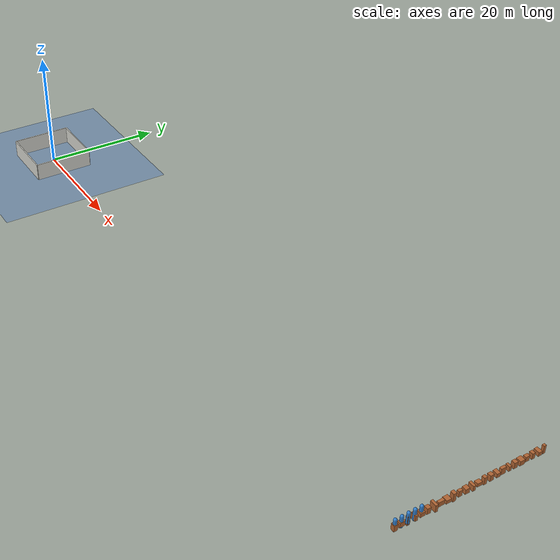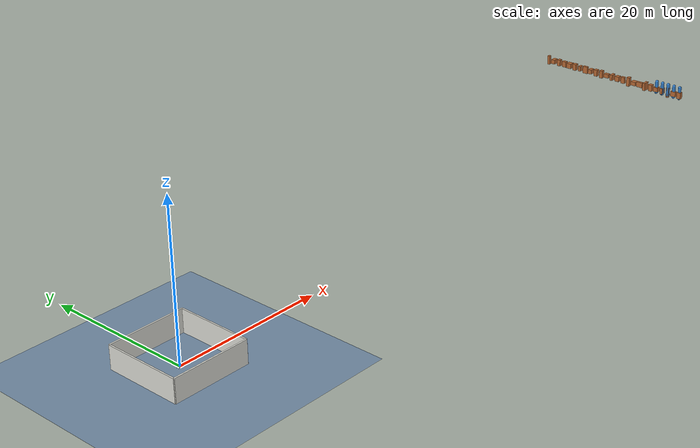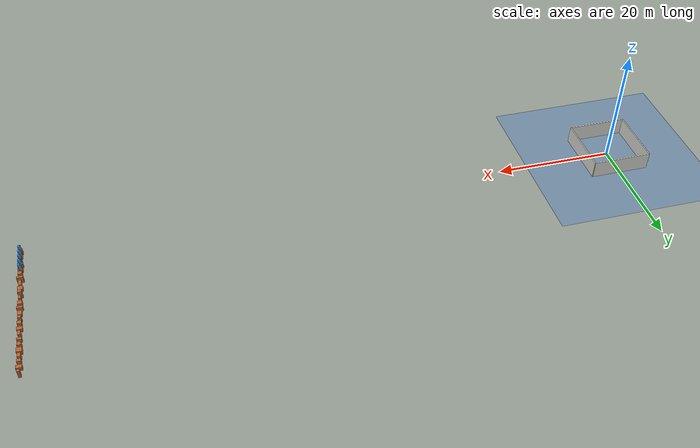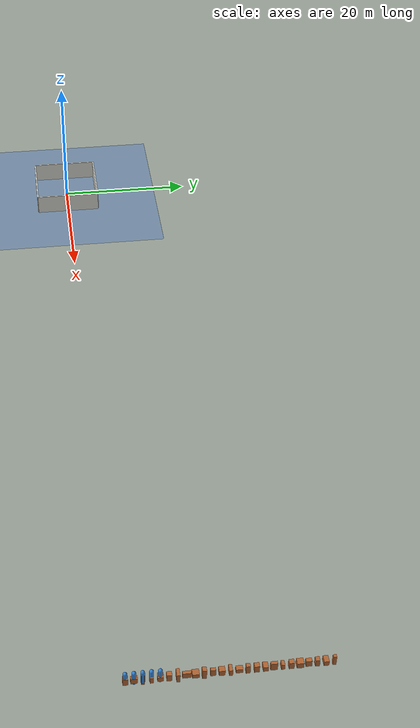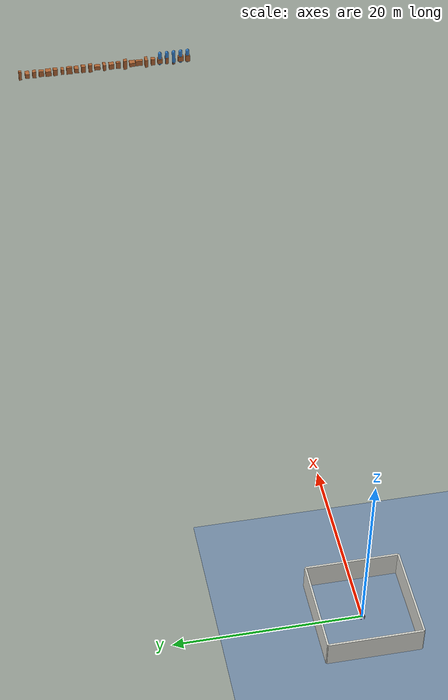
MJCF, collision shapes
<mujoco model="spot_scene">

  <compiler angle="radian" meshdir="assets" autolimits="true"/>

  <!-- RL-training physics: Euler integrator for fast MJX JIT compilation.
       Switch to implicitfast + impratio=100 for sim-to-real evaluation. -->
  <option timestep="0.005" gravity="0 0 -9.81" integrator="Euler"
          cone="elliptic" impratio="10"/>

  <visual>
    <global offwidth="1920" offheight="1080" ellipsoidinertia="true"/>
    <headlight diffuse="0.6 0.6 0.6" ambient="0.3 0.3 0.3" specular="0.2 0.2 0.2"/>
    <quality shadowsize="4096"/>
  </visual>

  <default>
    <!-- Spot robot defaults (from Menagerie reference) -->
    <default class="spot">
      <geom solref="0.004 1"/>
      <joint actuatorfrcrange="-1000 1000" damping="1.0" armature="0.01" frictionloss="0.1"/>
      <position kp="500" kv="40" inheritrange="1" ctrllimited="true"/>
      <default class="visual">
        <geom group="2" type="mesh" contype="0" conaffinity="0"/>
      </default>
      <default class="collision">
        <geom group="3"/>
        <default class="foot">
          <geom type="sphere" size="0.036" pos="0 0 -0.3365" priority="1"
                condim="3" solimp="0.015 1 0.036" friction="0.8 0.02 0.01"/>
        </default>
      </default>
    </default>
    <default class="obstacle">
      <geom type="box" rgba="0.7 0.4 0.2 1" contype="0" conaffinity="0"/>
    </default>
    <default class="dynamic_obs">
      <geom type="capsule" rgba="0.2 0.5 0.8 0.9" contype="0" conaffinity="0"/>
    </default>
  </default>

  <!-- ASSETS                                                            -->
  <asset>
    <!-- Scene textures/materials -->
    <texture name="floor_tex" type="2d" builtin="checker"
             rgb1="0.45 0.55 0.65" rgb2="0.35 0.45 0.55" width="512" height="512"/>
    <material name="floor_mat" texture="floor_tex" texrepeat="10 10" reflectance="0.25"
              specular="0.4" shininess="0.5"/>
    <texture name="wall_tex" type="2d" builtin="flat"
             rgb1="0.85 0.85 0.82" width="128" height="128"/>
    <material name="wall_mat" texture="wall_tex" reflectance="0.05"/>

    <!-- Spot materials -->
    <material name="BlackAbs" rgba="0.1 0.1 0.1 1"/>
    <material name="wrap" rgba="0.878431 0.666666 0.227450 1"/>

    <!-- Spot meshes (from MuJoCo Menagerie — real Spot geometry) -->
    <mesh file="body_0.obj"/>
    <mesh file="body_1.obj"/>
    <mesh file="front_left_hip.obj"/>
    <mesh file="front_left_upper_leg_0.obj"/>
    <mesh file="front_left_upper_leg_1.obj"/>
    <mesh file="front_left_lower_leg.obj"/>
    <mesh file="front_right_hip.obj"/>
    <mesh file="front_right_upper_leg_0.obj"/>
    <mesh file="front_right_upper_leg_1.obj"/>
    <mesh file="front_right_lower_leg.obj"/>
    <mesh file="rear_left_hip.obj"/>
    <mesh file="rear_left_upper_leg_0.obj"/>
    <mesh file="rear_left_upper_leg_1.obj"/>
    <mesh file="rear_left_lower_leg.obj"/>
    <mesh file="rear_right_hip.obj"/>
    <mesh file="rear_right_upper_leg_0.obj"/>
    <mesh file="rear_right_upper_leg_1.obj"/>
    <mesh file="rear_right_lower_leg.obj"/>
    <mesh file="body_collision.obj"/>
    <mesh file="left_upper_leg_collision.obj"/>
    <mesh file="left_lower_leg_collision.obj"/>
    <mesh file="right_upper_leg_collision.obj"/>
    <mesh file="right_lower_leg_collision.obj"/>
  </asset>

  <!-- WORLD BODY                                                         -->
  <worldbody>

    <!-- Lighting -->
    <light name="top_light" pos="0 0 6" dir="0 0 -1" diffuse="0.8 0.8 0.8"
           specular="0.3 0.3 0.3" castshadow="true" cutoff="60"/>
    <light name="front_fill" pos="4 -4 5" dir="-0.4 0.4 -0.7" diffuse="0.4 0.4 0.5"
           specular="0.1 0.1 0.1" castshadow="false"/>
    <light name="back_fill" pos="-3 3 4" dir="0.3 -0.3 -0.6" diffuse="0.25 0.25 0.3"
           specular="0.05 0.05 0.05" castshadow="false"/>

    <!-- Floor -->
    <geom name="floor" type="plane" size="15 15 0.1"
          material="floor_mat" rgba="0.45 0.55 0.65 1" condim="3"/>

    <!-- Room walls (10x10 m room) — fixed -->
    <geom name="wall_north" type="box" size="5 0.1 1.5"
          pos="0 5 1.5" material="wall_mat" rgba="0.85 0.85 0.82 1"/>
    <geom name="wall_south" type="box" size="5 0.1 1.5"
          pos="0 -5 1.5" material="wall_mat" rgba="0.85 0.85 0.82 1"/>
    <geom name="wall_east" type="box" size="0.1 5 1.5"
          pos="5 0 1.5" material="wall_mat" rgba="0.85 0.85 0.82 1"/>
    <geom name="wall_west" type="box" size="0.1 5 1.5"
          pos="-5 0 1.5" material="wall_mat" rgba="0.85 0.85 0.82 1"/>

    <!-- STATIC OBSTACLE MOCAP BODIES (25 max from config)            -->
    <body name="obstacle_0"  mocap="true" pos="100 0 0.5"><geom class="obstacle" size="0.3 0.3 0.5"/></body>
    <body name="obstacle_1"  mocap="true" pos="100 1 0.5"><geom class="obstacle" size="0.25 0.4 0.4"/></body>
    <body name="obstacle_2"  mocap="true" pos="100 2 0.5"><geom class="obstacle" size="0.2 0.2 0.8"/></body>
    <body name="obstacle_3"  mocap="true" pos="100 3 0.5"><geom class="obstacle" size="0.4 0.2 0.45"/></body>
    <body name="obstacle_4"  mocap="true" pos="100 4 0.5"><geom class="obstacle" size="0.35 0.35 0.35"/></body>
    <body name="obstacle_5"  mocap="true" pos="100 5 0.5"><geom class="obstacle" size="0.3 0.3 0.5"/></body>
    <body name="obstacle_6"  mocap="true" pos="100 6 0.5"><geom class="obstacle" size="0.5 0.2 0.6"/></body>
    <body name="obstacle_7"  mocap="true" pos="100 7 0.5"><geom class="obstacle" size="0.2 0.5 0.4"/></body>
    <body name="obstacle_8"  mocap="true" pos="100 8 0.5"><geom class="obstacle" size="0.4 0.4 0.3"/></body>
    <body name="obstacle_9"  mocap="true" pos="100 9 0.5"><geom class="obstacle" size="0.3 0.25 0.7"/></body>
    <body name="obstacle_10" mocap="true" pos="100 10 0.5"><geom class="obstacle" size="0.2 0.3 0.5"/></body>
    <body name="obstacle_11" mocap="true" pos="100 11 0.5"><geom class="obstacle" size="0.35 0.35 0.4"/></body>
    <body name="obstacle_12" mocap="true" pos="100 12 0.5"><geom class="obstacle" size="0.45 0.2 0.45"/></body>
    <body name="obstacle_13" mocap="true" pos="100 13 0.5"><geom class="obstacle" size="0.3 0.4 0.3"/></body>
    <body name="obstacle_14" mocap="true" pos="100 14 0.5"><geom class="obstacle" size="0.25 0.25 0.6"/></body>
    <body name="obstacle_15" mocap="true" pos="100 15 0.5"><geom class="obstacle" size="0.3 0.3 0.5"/></body>
    <body name="obstacle_16" mocap="true" pos="100 16 0.5"><geom class="obstacle" size="0.4 0.3 0.35"/></body>
    <body name="obstacle_17" mocap="true" pos="100 17 0.5"><geom class="obstacle" size="0.2 0.4 0.55"/></body>
    <body name="obstacle_18" mocap="true" pos="100 18 0.5"><geom class="obstacle" size="0.35 0.2 0.4"/></body>
    <body name="obstacle_19" mocap="true" pos="100 19 0.5"><geom class="obstacle" size="0.3 0.3 0.5"/></body>
    <body name="obstacle_20" mocap="true" pos="100 20 0.5"><geom class="obstacle" size="0.4 0.4 0.4"/></body>
    <body name="obstacle_21" mocap="true" pos="100 21 0.5"><geom class="obstacle" size="0.25 0.35 0.45"/></body>
    <body name="obstacle_22" mocap="true" pos="100 22 0.5"><geom class="obstacle" size="0.3 0.25 0.5"/></body>
    <body name="obstacle_23" mocap="true" pos="100 23 0.5"><geom class="obstacle" size="0.45 0.3 0.35"/></body>
    <body name="obstacle_24" mocap="true" pos="100 24 0.5"><geom class="obstacle" size="0.2 0.2 0.7"/></body>

    <!-- DYNAMIC OBSTACLE MOCAP BODIES (5 max from config)            -->
    <body name="dynobs_0" mocap="true" pos="100 0 0.85"><geom class="dynamic_obs" size="0.25 0.85"/></body>
    <body name="dynobs_1" mocap="true" pos="100 1 0.85"><geom class="dynamic_obs" size="0.25 0.85"/></body>
    <body name="dynobs_2" mocap="true" pos="100 2 0.85"><geom class="dynamic_obs" size="0.25 0.85"/></body>
    <body name="dynobs_3" mocap="true" pos="100 3 0.85"><geom class="dynamic_obs" size="0.25 0.85"/></body>
    <body name="dynobs_4" mocap="true" pos="100 4 0.85"><geom class="dynamic_obs" size="0.25 0.85"/></body>

    <!-- HUMANOID OBSTACLE MOCAP BODY                                  -->
    <body name="human_0" mocap="true" pos="100 0 1.0">
      <geom name="human_0_torso" type="capsule" size="0.12 0.25"
            pos="0 0 0" rgba="0.8 0.6 0.5 1" contype="0" conaffinity="0"/>
      <geom name="human_0_head" type="sphere" size="0.12"
            pos="0 0 0.42" rgba="0.8 0.6 0.5 1" contype="0" conaffinity="0"/>
      <geom name="human_0_lul" type="capsule" size="0.07 0.2"
            pos="-0.1 0 -0.45" rgba="0.3 0.3 0.7 1" contype="0" conaffinity="0"/>
      <geom name="human_0_rul" type="capsule" size="0.07 0.2"
            pos="0.1 0 -0.45" rgba="0.3 0.3 0.7 1" contype="0" conaffinity="0"/>
      <geom name="human_0_lll" type="capsule" size="0.06 0.2"
            pos="-0.1 0 -0.85" rgba="0.3 0.3 0.7 1" contype="0" conaffinity="0"/>
      <geom name="human_0_rll" type="capsule" size="0.06 0.2"
            pos="0.1 0 -0.85" rgba="0.3 0.3 0.7 1" contype="0" conaffinity="0"/>
    </body>

    <!-- SPOT ROBOT — Physics-accurate from MuJoCo Menagerie          -->
    <!-- Real mass=32.86kg body, 1.68kg hips, 2.34kg upper legs,      -->
    <!-- 0.35kg lower legs. Real link lengths & joint limits from SDK. -->
    <body name="base_link" childclass="spot" pos="0 0 0.46">
      <light name="tracking" mode="trackcom" pos="0 0 2"/>
      <freejoint name="root"/>

      <!-- Real body inertial: 32.86 kg with proper CoM offset -->
      <inertial pos="0.0063944 -9.81216e-05 0.000911379" mass="32.86"
                diaginertia="0.13144 0.13144 0.13144"/>

      <!-- Body visual meshes (real Spot geometry) -->
      <geom mesh="body_0" material="BlackAbs" class="visual"/>
      <geom mesh="body_1" material="wrap" class="visual"/>
      <!-- Body collision: box approximation (MJX-friendly, no mesh collision) -->
      <geom type="box" size="0.32 0.1 0.08" pos="0 0 0" class="collision"/>

      <!-- ── CAMERA SITES (match config.py CAMERA_RIG exactly) ── -->
      <site name="cam_front_center" pos="0.32 0.0 0.05"
            euler="0 -0.1745 0" size="0.01"/>
      <camera name="depth_front_center" pos="0.32 0.0 0.05"
              euler="0 -0.1745 0" fovy="58" mode="fixed"/>
      <site name="cam_front_left" pos="0.20 0.16 0.05"
            euler="0 -0.1745 1.2217" size="0.01"/>
      <camera name="depth_front_left" pos="0.20 0.16 0.05"
              euler="0 -0.1745 1.2217" fovy="58" mode="fixed"/>
      <site name="cam_front_right" pos="0.20 -0.16 0.05"
            euler="0 -0.1745 -1.2217" size="0.01"/>
      <camera name="depth_front_right" pos="0.20 -0.16 0.05"
              euler="0 -0.1745 -1.2217" fovy="58" mode="fixed"/>
      <site name="cam_rear_left" pos="-0.28 0.14 0.05"
            euler="0 -0.1745 2.5307" size="0.01"/>
      <camera name="depth_rear_left" pos="-0.28 0.14 0.05"
              euler="0 -0.1745 2.5307" fovy="58" mode="fixed"/>
      <site name="cam_rear_right" pos="-0.28 -0.14 0.05"
            euler="0 -0.1745 -2.5307" size="0.01"/>
      <camera name="depth_rear_right" pos="-0.28 -0.14 0.05"
              euler="0 -0.1745 -2.5307" fovy="58" mode="fixed"/>

      <!-- IMU site at body center -->
      <site name="imu" pos="0 0 0" size="0.01"/>

      <!-- FRONT-LEFT LEG (real: hip offset 0.29785, uleg Y=0.1108,    -->
      <!--   upper leg 0.32m, lower leg knee-X offset 0.025)           -->
      <body name="fl_hip" pos="0.29785 0.055 0">
        <inertial pos="-0.00537435 0.0128418 9.87523e-05" quat="1 1 -1 1" mass="1.68"
          diaginertia="0.00226544 0.00211474 0.00181296"/>
        <joint name="fl_hx" axis="1 0 0" range="-0.785398 0.785398"/>
        <geom material="BlackAbs" mesh="front_left_hip" class="visual"/>
        <body name="fl_uleg" pos="0 0.1108 0">
          <inertial pos="0.00514237 -0.00243237 -0.121009" mass="2.34"
            diaginertia="0.0275596 0.0273549 0.00284815"/>
          <joint name="fl_hy" axis="0 1 0" range="-0.898845 2.29511"/>
          <geom mesh="front_left_upper_leg_0" material="wrap" class="visual"/>
          <geom mesh="front_left_upper_leg_1" material="BlackAbs" class="visual"/>
          <geom type="capsule" size="0.04" fromto="0 0 0 0 0 -0.32" class="collision"/>
          <body name="fl_lleg" pos="0.025 0 -0.32">
            <inertial pos="0.00225794 4.6076e-05 -0.180082" quat="1 0 0 1" mass="0.35"
              diaginertia="0.00405032 0.00399902 0.00014934"/>
            <joint name="fl_kn" axis="0 1 0" range="-2.7929 -0.254402"/>
            <geom material="BlackAbs" mesh="front_left_lower_leg" class="visual"/>
            <geom type="capsule" size="0.03" fromto="0 0 0 0 0 -0.32" class="collision"/>
            <geom name="fl_foot" class="foot"/>
          </body>
        </body>
      </body>

      <!-- FRONT-RIGHT LEG                                               -->
      <body name="fr_hip" pos="0.29785 -0.055 0">
        <inertial pos="-0.00537435 -0.0128418 -9.87523e-05" quat="1 1 -1 1" mass="1.68"
          diaginertia="0.00226544 0.00211474 0.00181296"/>
        <joint name="fr_hx" axis="1 0 0" range="-0.785398 0.785398"/>
        <geom material="BlackAbs" mesh="front_right_hip" class="visual"/>
        <body name="fr_uleg" pos="0 -0.1108 0">
          <inertial pos="0.00514237 0.00243237 -0.121009" mass="2.34"
            diaginertia="0.0275596 0.0273549 0.00284815"/>
          <joint name="fr_hy" axis="0 1 0" range="-0.898845 2.24363"/>
          <geom mesh="front_right_upper_leg_0" material="wrap" class="visual"/>
          <geom mesh="front_right_upper_leg_1" material="BlackAbs" class="visual"/>
          <geom type="capsule" size="0.04" fromto="0 0 0 0 0 -0.32" class="collision"/>
          <body name="fr_lleg" pos="0.025 0 -0.32">
            <inertial pos="0.00225794 4.6076e-05 -0.180082" quat="1 0 0 1" mass="0.35"
              diaginertia="0.00405032 0.00399902 0.00014934"/>
            <joint name="fr_kn" axis="0 1 0" range="-2.7929 -0.255648"/>
            <geom material="BlackAbs" mesh="front_right_lower_leg" class="visual"/>
            <geom type="capsule" size="0.03" fromto="0 0 0 0 0 -0.32" class="collision"/>
            <geom name="fr_foot" class="foot"/>
          </body>
        </body>
      </body>

      <!-- HIND-LEFT LEG                                                 -->
      <body name="hl_hip" pos="-0.29785 0.055 0">
        <inertial pos="0.00537435 0.0128418 -9.87523e-05" quat="1 1 -1 1" mass="1.68"
          diaginertia="0.00226544 0.00211474 0.00181296"/>
        <joint name="hl_hx" axis="1 0 0" range="-0.785398 0.785398"/>
        <geom material="BlackAbs" mesh="rear_left_hip" class="visual"/>
        <body name="hl_uleg" pos="0 0.1108 0">
          <inertial pos="0.00514237 -0.00243237 -0.121009" mass="2.34"
            diaginertia="0.0275596 0.0273549 0.00284815"/>
          <joint name="hl_hy" axis="0 1 0" range="-0.898845 2.29511"/>
          <geom mesh="rear_left_upper_leg_0" material="wrap" class="visual"/>
          <geom mesh="rear_left_upper_leg_1" material="BlackAbs" class="visual"/>
          <geom type="capsule" size="0.04" fromto="0 0 0 0 0 -0.32" class="collision"/>
          <body name="hl_lleg" pos="0.025 0 -0.32">
            <inertial pos="0.00225794 4.6076e-05 -0.180082" quat="1 0 0 1" mass="0.35"
              diaginertia="0.00405032 0.00399902 0.00014934"/>
            <joint name="hl_kn" axis="0 1 0" range="-2.7929 -0.247067"/>
            <geom material="BlackAbs" mesh="rear_left_lower_leg" class="visual"/>
            <geom type="capsule" size="0.03" fromto="0 0 0 0 0 -0.32" class="collision"/>
            <geom name="hl_foot" class="foot"/>
          </body>
        </body>
      </body>

      <!-- HIND-RIGHT LEG                                                -->
      <body name="hr_hip" pos="-0.29785 -0.055 0">
        <inertial pos="0.00537435 -0.0128418 9.87523e-05" quat="1 1 -1 1" mass="1.68"
          diaginertia="0.00226544 0.00211474 0.00181296"/>
        <joint name="hr_hx" axis="1 0 0" range="-0.785398 0.785398"/>
        <geom material="BlackAbs" mesh="rear_right_hip" class="visual"/>
        <body name="hr_uleg" pos="0 -0.1108 0">
          <inertial pos="0.00514237 0.00243237 -0.121009" mass="2.34"
            diaginertia="0.0275596 0.0273549 0.00284815"/>
          <joint name="hr_hy" axis="0 1 0" range="-0.898845 2.29511"/>
          <geom mesh="rear_right_upper_leg_0" material="wrap" class="visual"/>
          <geom mesh="rear_right_upper_leg_1" material="BlackAbs" class="visual"/>
          <geom type="capsule" size="0.04" fromto="0 0 0 0 0 -0.32" class="collision"/>
          <body name="hr_lleg" pos="0.025 0 -0.32">
            <inertial pos="0.00225794 4.6076e-05 -0.180082" quat="1 0 0 1" mass="0.35"
              diaginertia="0.00405032 0.00399902 0.00014934"/>
            <joint name="hr_kn" axis="0 1 0" range="-2.7929 -0.248282"/>
            <geom material="BlackAbs" mesh="rear_right_lower_leg" class="visual"/>
            <geom type="capsule" size="0.03" fromto="0 0 0 0 0 -0.32" class="collision"/>
            <geom name="hr_foot" class="foot"/>
          </body>
        </body>
      </body>

    </body> <!-- end base_link -->

  </worldbody>

  <!-- CONTACT EXCLUSIONS — prevent self-collision body<->upper legs    -->
  <contact>
    <exclude body1="base_link" body2="fl_uleg"/>
    <exclude body1="base_link" body2="fr_uleg"/>
    <exclude body1="base_link" body2="hl_uleg"/>
    <exclude body1="base_link" body2="hr_uleg"/>
  </contact>

  <!-- ACTUATORS — position control, kp=500 kv=40 (real Spot SEA)      -->
  <!-- Force limits ±1000N per joint via actuatorfrcrange in defaults   -->
  <actuator>
    <position class="spot" name="act_fl_hx" joint="fl_hx"/>
    <position class="spot" name="act_fl_hy" joint="fl_hy"/>
    <position class="spot" name="act_fl_kn" joint="fl_kn"/>
    <position class="spot" name="act_fr_hx" joint="fr_hx"/>
    <position class="spot" name="act_fr_hy" joint="fr_hy"/>
    <position class="spot" name="act_fr_kn" joint="fr_kn"/>
    <position class="spot" name="act_hl_hx" joint="hl_hx"/>
    <position class="spot" name="act_hl_hy" joint="hl_hy"/>
    <position class="spot" name="act_hl_kn" joint="hl_kn"/>
    <position class="spot" name="act_hr_hx" joint="hr_hx"/>
    <position class="spot" name="act_hr_hy" joint="hr_hy"/>
    <position class="spot" name="act_hr_kn" joint="hr_kn"/>
  </actuator>

  <!-- SENSORS                                                           -->
  <sensor>
    <jointpos name="jpos_fl_hx" joint="fl_hx"/>
    <jointpos name="jpos_fl_hy" joint="fl_hy"/>
    <jointpos name="jpos_fl_kn" joint="fl_kn"/>
    <jointpos name="jpos_fr_hx" joint="fr_hx"/>
    <jointpos name="jpos_fr_hy" joint="fr_hy"/>
    <jointpos name="jpos_fr_kn" joint="fr_kn"/>
    <jointpos name="jpos_hl_hx" joint="hl_hx"/>
    <jointpos name="jpos_hl_hy" joint="hl_hy"/>
    <jointpos name="jpos_hl_kn" joint="hl_kn"/>
    <jointpos name="jpos_hr_hx" joint="hr_hx"/>
    <jointpos name="jpos_hr_hy" joint="hr_hy"/>
    <jointpos name="jpos_hr_kn" joint="hr_kn"/>
    <jointvel name="jvel_fl_hx" joint="fl_hx"/>
    <jointvel name="jvel_fl_hy" joint="fl_hy"/>
    <jointvel name="jvel_fl_kn" joint="fl_kn"/>
    <jointvel name="jvel_fr_hx" joint="fr_hx"/>
    <jointvel name="jvel_fr_hy" joint="fr_hy"/>
    <jointvel name="jvel_fr_kn" joint="fr_kn"/>
    <jointvel name="jvel_hl_hx" joint="hl_hx"/>
    <jointvel name="jvel_hl_hy" joint="hl_hy"/>
    <jointvel name="jvel_hl_kn" joint="hl_kn"/>
    <jointvel name="jvel_hr_hx" joint="hr_hx"/>
    <jointvel name="jvel_hr_hy" joint="hr_hy"/>
    <jointvel name="jvel_hr_kn" joint="hr_kn"/>
    <framequat  name="imu_quat"   objtype="site" objname="imu"/>
    <framelinvel name="imu_linvel" objtype="site" objname="imu"/>
    <frameangvel name="imu_angvel" objtype="site" objname="imu"/>
  </sensor>

  <!-- KEYFRAME — real standing pose from Spot SDK                      -->
  <keyframe>
    <key name="home" qpos="
    0 0 0.46
    1 0 0 0
    0 1.04 -1.8
    0 1.04 -1.8
    0 1.04 -1.8
    0 1.04 -1.8"
      ctrl="
    0 1.04 -1.8
    0 1.04 -1.8
    0 1.04 -1.8
    0 1.04 -1.8"/>
  </keyframe>

</mujoco>
